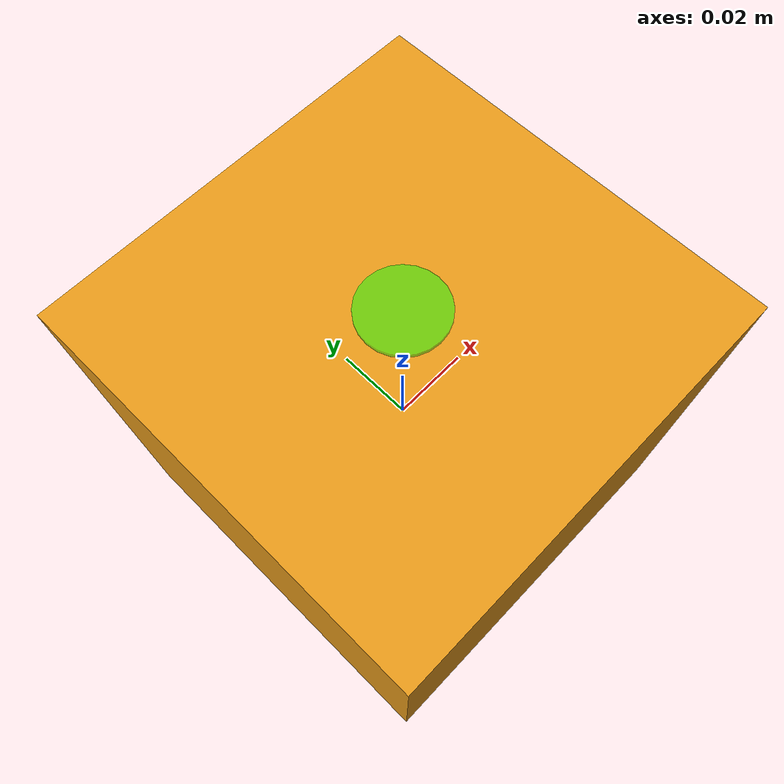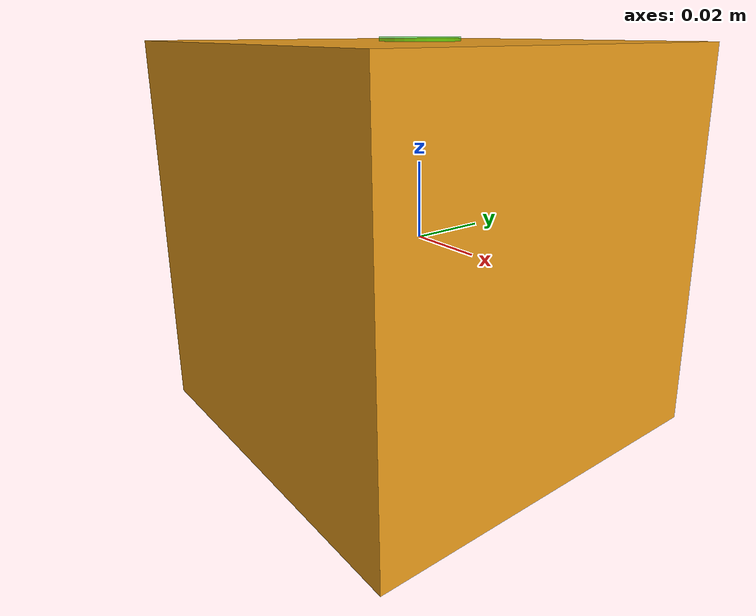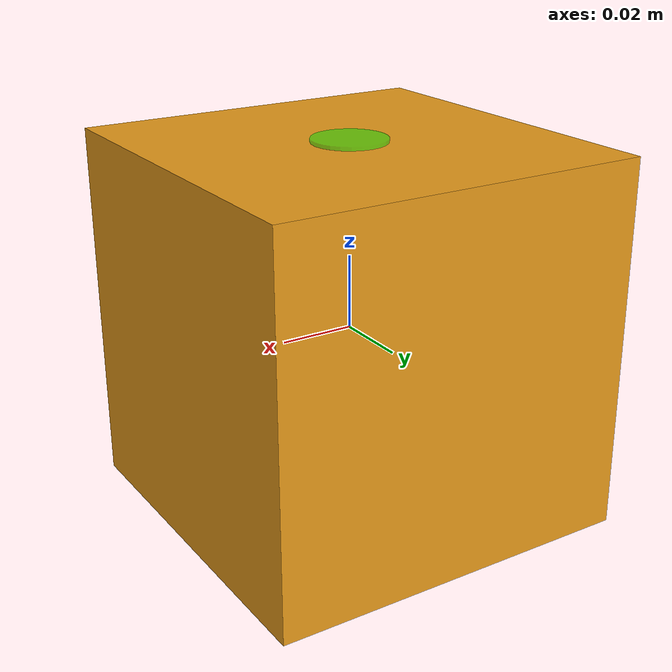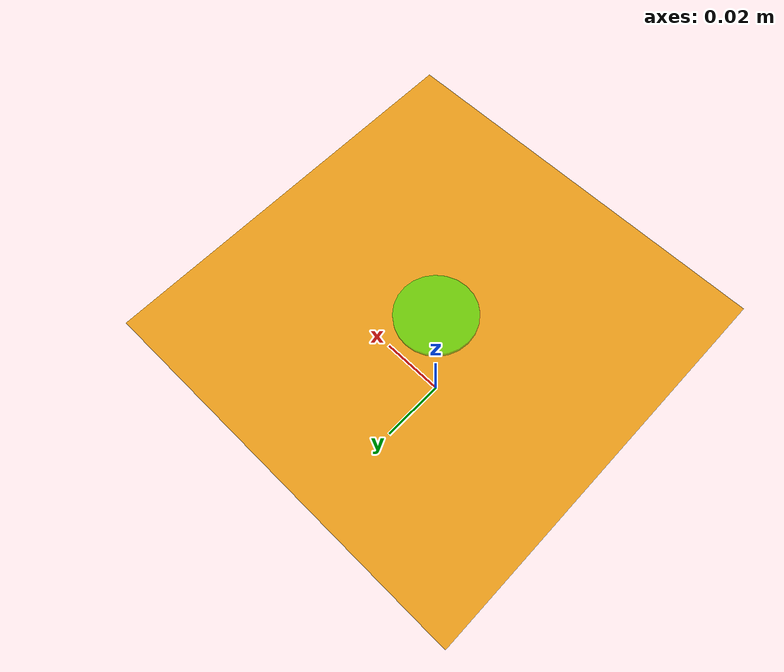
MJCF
<mujoco model="suction_box">
  <worldbody>
    <body name="pick_box">
      <freejoint/>
      <geom name="pick_box_geom" type="box" size="0.05 0.05 0.05"
            density="800" rgba="0.9 0.6 0.1 1"/>
      <site name="affordance_suction_top" pos="0 0 0.05" zaxis="0 0 1"
            type="cylinder" size="0.01 0.001" rgba="0 1 0 0.5"/>
    </body>
  </worldbody>
</mujoco>
